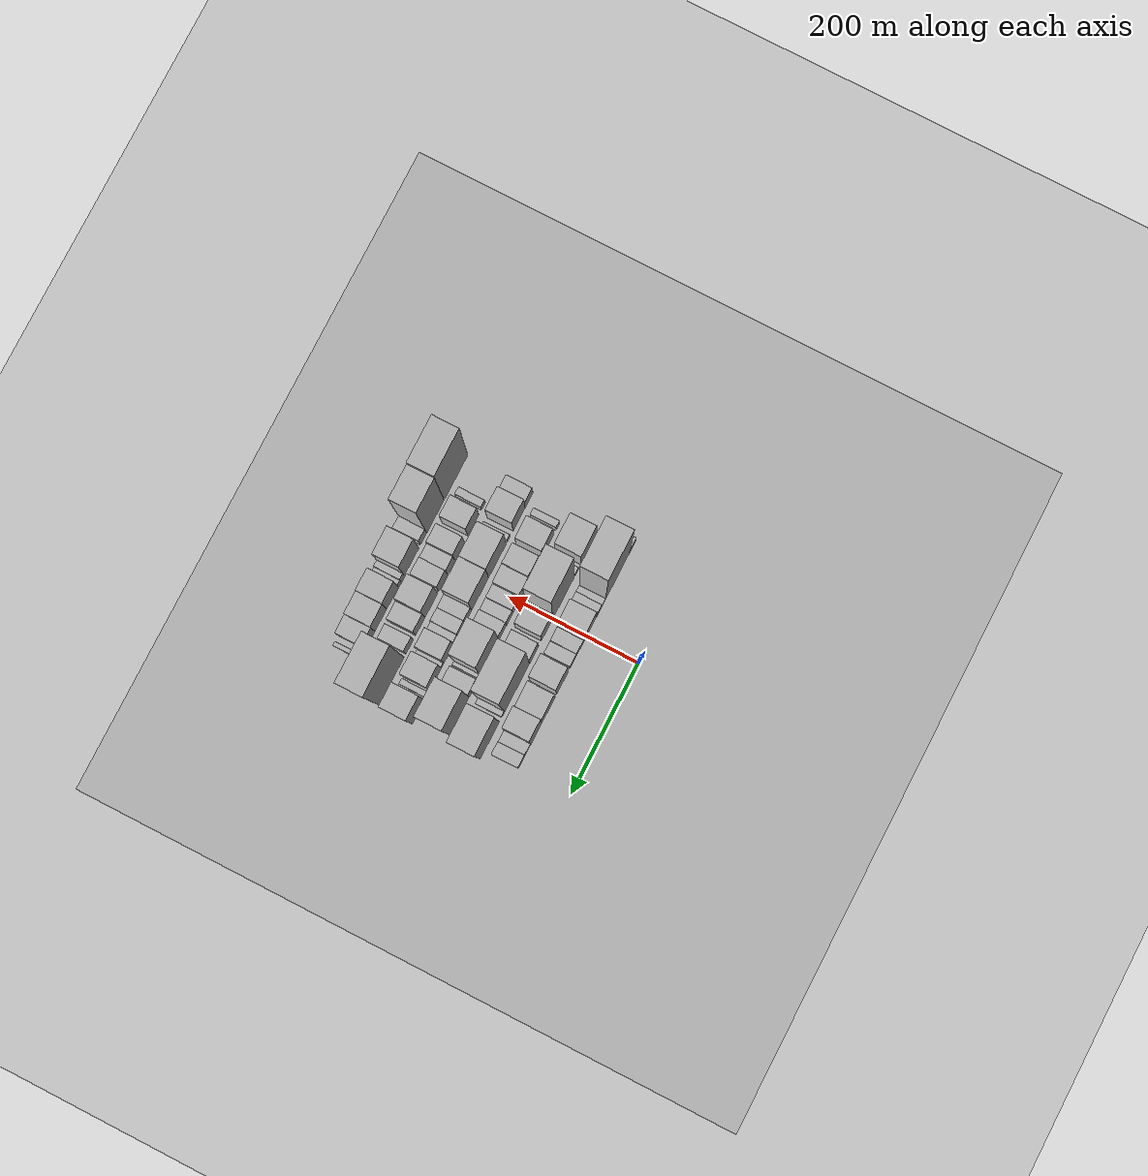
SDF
<sdf version="1.6">
 <world name="default">
  <include><name>ground_plane_1</name><uri>model://HANNAS_ground_plane</uri></include>
  <include>
   <name>ground_plane_2</name>
   <uri>model://HANNAS_ground_plane</uri>
   <pose>100 0 0  0 0 0</pose>
  </include>
  <model name="building_23">
   <static>1</static>
   <pose>100.0000 -137.6014 0 0.000000 0.000000 0.000000</pose>
   <link name="link">
    <pose>0 0 18.00 0 0 0</pose>
    <collision name="collision"><geometry><box><size>40.0000 19.6725 36.0000</size></box></geometry></collision>
    <visual name="visual">
     <cast_shadows>0</cast_shadows>
     <geometry><box><size>40.0000 19.6725 36.0000</size></box></geometry>
     <material>
      <script>
       <uri>model://HANNAS_wall/materials/scripts</uri>
       <uri>model://HANNAS_wall/materials/textures</uri>
       <name>vrc/HANNAS_wall</name>
      </script>
     </material>
    </visual>
   </link>
  </model>
  <model name="building_24">
   <static>1</static>
   <pose>100.0000 -91.9433 0 0.000000 0.000000 0.000000</pose>
   <link name="link">
    <pose>0 0 109.50 0 0 0</pose>
    <collision name="collision"><geometry><box><size>40.0000 71.6437 219.0000</size></box></geometry></collision>
    <visual name="visual">
     <cast_shadows>0</cast_shadows>
     <geometry><box><size>40.0000 71.6437 219.0000</size></box></geometry>
     <material>
      <script>
       <uri>model://HANNAS_wall/materials/scripts</uri>
       <uri>model://HANNAS_wall/materials/textures</uri>
       <name>vrc/HANNAS_wall</name>
      </script>
     </material>
    </visual>
   </link>
  </model>
  <model name="building_25">
   <static>1</static>
   <pose>100.0000 -50.9003 0 0.000000 0.000000 0.000000</pose>
   <link name="link">
    <pose>0 0 12.00 0 0 0</pose>
    <collision name="collision"><geometry><box><size>40.0000 10.4422 24.0000</size></box></geometry></collision>
    <visual name="visual">
     <cast_shadows>0</cast_shadows>
     <geometry><box><size>40.0000 10.4422 24.0000</size></box></geometry>
     <material>
      <script>
       <uri>model://HANNAS_wall/materials/scripts</uri>
       <uri>model://HANNAS_wall/materials/textures</uri>
       <name>vrc/HANNAS_wall</name>
      </script>
     </material>
    </visual>
   </link>
  </model>
  <model name="building_26">
   <static>1</static>
   <pose>100.0000 -37.4652 0 0.000000 0.000000 0.000000</pose>
   <link name="link">
    <pose>0 0 15.00 0 0 0</pose>
    <collision name="collision"><geometry><box><size>40.0000 16.4280 30.0000</size></box></geometry></collision>
    <visual name="visual">
     <cast_shadows>0</cast_shadows>
     <geometry><box><size>40.0000 16.4280 30.0000</size></box></geometry>
     <material>
      <script>
       <uri>model://HANNAS_wall/materials/scripts</uri>
       <uri>model://HANNAS_wall/materials/textures</uri>
       <name>vrc/HANNAS_wall</name>
      </script>
     </material>
    </visual>
   </link>
  </model>
  <model name="building_27">
   <static>1</static>
   <pose>100.0000 -10.2353 0 0.000000 0.000000 0.000000</pose>
   <link name="link">
    <pose>0 0 37.50 0 0 0</pose>
    <collision name="collision"><geometry><box><size>40.0000 38.0316 75.0000</size></box></geometry></collision>
    <visual name="visual">
     <cast_shadows>0</cast_shadows>
     <geometry><box><size>40.0000 38.0316 75.0000</size></box></geometry>
     <material>
      <script>
       <uri>model://HANNAS_wall/materials/scripts</uri>
       <uri>model://HANNAS_wall/materials/textures</uri>
       <name>vrc/HANNAS_wall</name>
      </script>
     </material>
    </visual>
   </link>
  </model>
  <model name="building_28">
   <static>1</static>
   <pose>100.0000 19.3150 0 0.000000 0.000000 0.000000</pose>
   <link name="link">
    <pose>0 0 18.00 0 0 0</pose>
    <collision name="collision"><geometry><box><size>40.0000 21.0690 36.0000</size></box></geometry></collision>
    <visual name="visual">
     <cast_shadows>0</cast_shadows>
     <geometry><box><size>40.0000 21.0690 36.0000</size></box></geometry>
     <material>
      <script>
       <uri>model://HANNAS_wall/materials/scripts</uri>
       <uri>model://HANNAS_wall/materials/textures</uri>
       <name>vrc/HANNAS_wall</name>
      </script>
     </material>
    </visual>
   </link>
  </model>
  <model name="building_29">
   <static>1</static>
   <pose>100.0000 39.4453 0 0.000000 0.000000 0.000000</pose>
   <link name="link">
    <pose>0 0 16.50 0 0 0</pose>
    <collision name="collision"><geometry><box><size>40.0000 19.1917 33.0000</size></box></geometry></collision>
    <visual name="visual">
     <cast_shadows>0</cast_shadows>
     <geometry><box><size>40.0000 19.1917 33.0000</size></box></geometry>
     <material>
      <script>
       <uri>model://HANNAS_wall/materials/scripts</uri>
       <uri>model://HANNAS_wall/materials/textures</uri>
       <name>vrc/HANNAS_wall</name>
      </script>
     </material>
    </visual>
   </link>
  </model>
  <model name="building_30">
   <static>1</static>
   <pose>100.0000 72.2070 0 0.000000 0.000000 0.000000</pose>
   <link name="link">
    <pose>0 0 51.00 0 0 0</pose>
    <collision name="collision"><geometry><box><size>40.0000 34.3316 102.0000</size></box></geometry></collision>
    <visual name="visual">
     <cast_shadows>0</cast_shadows>
     <geometry><box><size>40.0000 34.3316 102.0000</size></box></geometry>
     <material>
      <script>
       <uri>model://HANNAS_wall/materials/scripts</uri>
       <uri>model://HANNAS_wall/materials/textures</uri>
       <name>vrc/HANNAS_wall</name>
      </script>
     </material>
    </visual>
   </link>
  </model>
  <model name="building_31">
   <static>1</static>
   <pose>100.0000 112.7792 0 0.000000 0.000000 0.000000</pose>
   <link name="link">
    <pose>0 0 37.50 0 0 0</pose>
    <collision name="collision"><geometry><box><size>40.0000 38.8129 75.0000</size></box></geometry></collision>
    <visual name="visual">
     <cast_shadows>0</cast_shadows>
     <geometry><box><size>40.0000 38.8129 75.0000</size></box></geometry>
     <material>
      <script>
       <uri>model://HANNAS_wall/materials/scripts</uri>
       <uri>model://HANNAS_wall/materials/textures</uri>
       <name>vrc/HANNAS_wall</name>
      </script>
     </material>
    </visual>
   </link>
  </model>
  <model name="building_32">
   <static>1</static>
   <pose>100.0000 148.5087 0 0.000000 0.000000 0.000000</pose>
   <link name="link">
    <pose>0 0 54.00 0 0 0</pose>
    <collision name="collision"><geometry><box><size>40.0000 32.6460 108.0000</size></box></geometry></collision>
    <visual name="visual">
     <cast_shadows>0</cast_shadows>
     <geometry><box><size>40.0000 32.6460 108.0000</size></box></geometry>
     <material>
      <script>
       <uri>model://HANNAS_wall/materials/scripts</uri>
       <uri>model://HANNAS_wall/materials/textures</uri>
       <name>vrc/HANNAS_wall</name>
      </script>
     </material>
    </visual>
   </link>
  </model>
  <model name="building_33">
   <static>1</static>
   <pose>100.0000 173.4542 0 0.000000 0.000000 0.000000</pose>
   <link name="link">
    <pose>0 0 15.00 0 0 0</pose>
    <collision name="collision"><geometry><box><size>40.0000 17.2449 30.0000</size></box></geometry></collision>
    <visual name="visual">
     <cast_shadows>0</cast_shadows>
     <geometry><box><size>40.0000 17.2449 30.0000</size></box></geometry>
     <material>
      <script>
       <uri>model://HANNAS_wall/materials/scripts</uri>
       <uri>model://HANNAS_wall/materials/textures</uri>
       <name>vrc/HANNAS_wall</name>
      </script>
     </material>
    </visual>
   </link>
  </model>
  <model name="building_34">
   <static>1</static>
   <pose>100.0000 191.8668 0 0.000000 0.000000 0.000000</pose>
   <link name="link">
    <pose>0 0 19.50 0 0 0</pose>
    <collision name="collision"><geometry><box><size>40.0000 19.5803 39.0000</size></box></geometry></collision>
    <visual name="visual">
     <cast_shadows>0</cast_shadows>
     <geometry><box><size>40.0000 19.5803 39.0000</size></box></geometry>
     <material>
      <script>
       <uri>model://HANNAS_wall/materials/scripts</uri>
       <uri>model://HANNAS_wall/materials/textures</uri>
       <name>vrc/HANNAS_wall</name>
      </script>
     </material>
    </visual>
   </link>
  </model>
  <model name="building_86">
   <static>1</static>
   <pose>152.0000 -107.5899 0 0.000000 0.000000 0.000000</pose>
   <link name="link">
    <pose>0 0 40.50 0 0 0</pose>
    <collision name="collision"><geometry><box><size>40.0000 46.4714 81.0000</size></box></geometry></collision>
    <visual name="visual">
     <cast_shadows>0</cast_shadows>
     <geometry><box><size>40.0000 46.4714 81.0000</size></box></geometry>
     <material>
      <script>
       <uri>model://HANNAS_wall/materials/scripts</uri>
       <uri>model://HANNAS_wall/materials/textures</uri>
       <name>vrc/HANNAS_wall</name>
      </script>
     </material>
    </visual>
   </link>
  </model>
  <model name="building_87">
   <static>1</static>
   <pose>152.0000 -72.3711 0 0.000000 0.000000 0.000000</pose>
   <link name="link">
    <pose>0 0 10.50 0 0 0</pose>
    <collision name="collision"><geometry><box><size>40.0000 9.9662 21.0000</size></box></geometry></collision>
    <visual name="visual">
     <cast_shadows>0</cast_shadows>
     <geometry><box><size>40.0000 9.9662 21.0000</size></box></geometry>
     <material>
      <script>
       <uri>model://HANNAS_wall/materials/scripts</uri>
       <uri>model://HANNAS_wall/materials/textures</uri>
       <name>vrc/HANNAS_wall</name>
      </script>
     </material>
    </visual>
   </link>
  </model>
  <model name="building_88">
   <static>1</static>
   <pose>152.0000 -32.6085 0 0.000000 0.000000 0.000000</pose>
   <link name="link">
    <pose>0 0 99.00 0 0 0</pose>
    <collision name="collision"><geometry><box><size>40.0000 63.5590 198.0000</size></box></geometry></collision>
    <visual name="visual">
     <cast_shadows>0</cast_shadows>
     <geometry><box><size>40.0000 63.5590 198.0000</size></box></geometry>
     <material>
      <script>
       <uri>model://HANNAS_wall/materials/scripts</uri>
       <uri>model://HANNAS_wall/materials/textures</uri>
       <name>vrc/HANNAS_wall</name>
      </script>
     </material>
    </visual>
   </link>
  </model>
  <model name="building_89">
   <static>1</static>
   <pose>152.0000 16.1946 0 0.000000 0.000000 0.000000</pose>
   <link name="link">
    <pose>0 0 33.00 0 0 0</pose>
    <collision name="collision"><geometry><box><size>40.0000 34.0472 66.0000</size></box></geometry></collision>
    <visual name="visual">
     <cast_shadows>0</cast_shadows>
     <geometry><box><size>40.0000 34.0472 66.0000</size></box></geometry>
     <material>
      <script>
       <uri>model://HANNAS_wall/materials/scripts</uri>
       <uri>model://HANNAS_wall/materials/textures</uri>
       <name>vrc/HANNAS_wall</name>
      </script>
     </material>
    </visual>
   </link>
  </model>
  <model name="building_90">
   <static>1</static>
   <pose>152.0000 54.7938 0 0.000000 0.000000 0.000000</pose>
   <link name="link">
    <pose>0 0 25.50 0 0 0</pose>
    <collision name="collision"><geometry><box><size>40.0000 27.1513 51.0000</size></box></geometry></collision>
    <visual name="visual">
     <cast_shadows>0</cast_shadows>
     <geometry><box><size>40.0000 27.1513 51.0000</size></box></geometry>
     <material>
      <script>
       <uri>model://HANNAS_wall/materials/scripts</uri>
       <uri>model://HANNAS_wall/materials/textures</uri>
       <name>vrc/HANNAS_wall</name>
      </script>
     </material>
    </visual>
   </link>
  </model>
  <model name="building_91">
   <static>1</static>
   <pose>152.0000 105.2189 0 0.000000 0.000000 0.000000</pose>
   <link name="link">
    <pose>0 0 94.50 0 0 0</pose>
    <collision name="collision"><geometry><box><size>40.0000 73.6988 189.0000</size></box></geometry></collision>
    <visual name="visual">
     <cast_shadows>0</cast_shadows>
     <geometry><box><size>40.0000 73.6988 189.0000</size></box></geometry>
     <material>
      <script>
       <uri>model://HANNAS_wall/materials/scripts</uri>
       <uri>model://HANNAS_wall/materials/textures</uri>
       <name>vrc/HANNAS_wall</name>
      </script>
     </material>
    </visual>
   </link>
  </model>
  <model name="building_92">
   <static>1</static>
   <pose>152.0000 146.3299 0 0.000000 0.000000 0.000000</pose>
   <link name="link">
    <pose>0 0 9.00 0 0 0</pose>
    <collision name="collision"><geometry><box><size>40.0000 8.5233 18.0000</size></box></geometry></collision>
    <visual name="visual">
     <cast_shadows>0</cast_shadows>
     <geometry><box><size>40.0000 8.5233 18.0000</size></box></geometry>
     <material>
      <script>
       <uri>model://HANNAS_wall/materials/scripts</uri>
       <uri>model://HANNAS_wall/materials/textures</uri>
       <name>vrc/HANNAS_wall</name>
      </script>
     </material>
    </visual>
   </link>
  </model>
  <model name="building_93">
   <static>1</static>
   <pose>152.0000 185.6778 0 0.000000 0.000000 0.000000</pose>
   <link name="link">
    <pose>0 0 75.00 0 0 0</pose>
    <collision name="collision"><geometry><box><size>40.0000 56.1724 150.0000</size></box></geometry></collision>
    <visual name="visual">
     <cast_shadows>0</cast_shadows>
     <geometry><box><size>40.0000 56.1724 150.0000</size></box></geometry>
     <material>
      <script>
       <uri>model://HANNAS_wall/materials/scripts</uri>
       <uri>model://HANNAS_wall/materials/textures</uri>
       <name>vrc/HANNAS_wall</name>
      </script>
     </material>
    </visual>
   </link>
  </model>
  <model name="building_130">
   <static>1</static>
   <pose>204.0000 -116.7691 0 0.000000 0.000000 0.000000</pose>
   <link name="link">
    <pose>0 0 12.00 0 0 0</pose>
    <collision name="collision"><geometry><box><size>40.0000 10.6506 24.0000</size></box></geometry></collision>
    <visual name="visual">
     <cast_shadows>0</cast_shadows>
     <geometry><box><size>40.0000 10.6506 24.0000</size></box></geometry>
     <material>
      <script>
       <uri>model://HANNAS_wall/materials/scripts</uri>
       <uri>model://HANNAS_wall/materials/textures</uri>
       <name>vrc/HANNAS_wall</name>
      </script>
     </material>
    </visual>
   </link>
  </model>
  <model name="building_131">
   <static>1</static>
   <pose>204.0000 -86.3166 0 0.000000 0.000000 0.000000</pose>
   <link name="link">
    <pose>0 0 30.00 0 0 0</pose>
    <collision name="collision"><geometry><box><size>40.0000 34.2545 60.0000</size></box></geometry></collision>
    <visual name="visual">
     <cast_shadows>0</cast_shadows>
     <geometry><box><size>40.0000 34.2545 60.0000</size></box></geometry>
     <material>
      <script>
       <uri>model://HANNAS_wall/materials/scripts</uri>
       <uri>model://HANNAS_wall/materials/textures</uri>
       <name>vrc/HANNAS_wall</name>
      </script>
     </material>
    </visual>
   </link>
  </model>
  <model name="building_132">
   <static>1</static>
   <pose>204.0000 -46.6517 0 0.000000 0.000000 0.000000</pose>
   <link name="link">
    <pose>0 0 30.00 0 0 0</pose>
    <collision name="collision"><geometry><box><size>40.0000 31.0752 60.0000</size></box></geometry></collision>
    <visual name="visual">
     <cast_shadows>0</cast_shadows>
     <geometry><box><size>40.0000 31.0752 60.0000</size></box></geometry>
     <material>
      <script>
       <uri>model://HANNAS_wall/materials/scripts</uri>
       <uri>model://HANNAS_wall/materials/textures</uri>
       <name>vrc/HANNAS_wall</name>
      </script>
     </material>
    </visual>
   </link>
  </model>
  <model name="building_133">
   <static>1</static>
   <pose>204.0000 -17.0158 0 0.000000 0.000000 0.000000</pose>
   <link name="link">
    <pose>0 0 27.00 0 0 0</pose>
    <collision name="collision"><geometry><box><size>40.0000 28.1968 54.0000</size></box></geometry></collision>
    <visual name="visual">
     <cast_shadows>0</cast_shadows>
     <geometry><box><size>40.0000 28.1968 54.0000</size></box></geometry>
     <material>
      <script>
       <uri>model://HANNAS_wall/materials/scripts</uri>
       <uri>model://HANNAS_wall/materials/textures</uri>
       <name>vrc/HANNAS_wall</name>
      </script>
     </material>
    </visual>
   </link>
  </model>
  <model name="building_134">
   <static>1</static>
   <pose>204.0000 7.2032 0 0.000000 0.000000 0.000000</pose>
   <link name="link">
    <pose>0 0 19.50 0 0 0</pose>
    <collision name="collision"><geometry><box><size>40.0000 20.2411 39.0000</size></box></geometry></collision>
    <visual name="visual">
     <cast_shadows>0</cast_shadows>
     <geometry><box><size>40.0000 20.2411 39.0000</size></box></geometry>
     <material>
      <script>
       <uri>model://HANNAS_wall/materials/scripts</uri>
       <uri>model://HANNAS_wall/materials/textures</uri>
       <name>vrc/HANNAS_wall</name>
      </script>
     </material>
    </visual>
   </link>
  </model>
  <model name="building_135">
   <static>1</static>
   <pose>204.0000 26.8437 0 0.000000 0.000000 0.000000</pose>
   <link name="link">
    <pose>0 0 16.50 0 0 0</pose>
    <collision name="collision"><geometry><box><size>40.0000 19.0400 33.0000</size></box></geometry></collision>
    <visual name="visual">
     <cast_shadows>0</cast_shadows>
     <geometry><box><size>40.0000 19.0400 33.0000</size></box></geometry>
     <material>
      <script>
       <uri>model://HANNAS_wall/materials/scripts</uri>
       <uri>model://HANNAS_wall/materials/textures</uri>
       <name>vrc/HANNAS_wall</name>
      </script>
     </material>
    </visual>
   </link>
  </model>
  <model name="building_136">
   <static>1</static>
   <pose>204.0000 47.6767 0 0.000000 0.000000 0.000000</pose>
   <link name="link">
    <pose>0 0 21.00 0 0 0</pose>
    <collision name="collision"><geometry><box><size>40.0000 22.6261 42.0000</size></box></geometry></collision>
    <visual name="visual">
     <cast_shadows>0</cast_shadows>
     <geometry><box><size>40.0000 22.6261 42.0000</size></box></geometry>
     <material>
      <script>
       <uri>model://HANNAS_wall/materials/scripts</uri>
       <uri>model://HANNAS_wall/materials/textures</uri>
       <name>vrc/HANNAS_wall</name>
      </script>
     </material>
    </visual>
   </link>
  </model>
  <model name="building_137">
   <static>1</static>
   <pose>204.0000 85.8415 0 0.000000 0.000000 0.000000</pose>
   <link name="link">
    <pose>0 0 67.50 0 0 0</pose>
    <collision name="collision"><geometry><box><size>40.0000 53.7035 135.0000</size></box></geometry></collision>
    <visual name="visual">
     <cast_shadows>0</cast_shadows>
     <geometry><box><size>40.0000 53.7035 135.0000</size></box></geometry>
     <material>
      <script>
       <uri>model://HANNAS_wall/materials/scripts</uri>
       <uri>model://HANNAS_wall/materials/textures</uri>
       <name>vrc/HANNAS_wall</name>
      </script>
     </material>
    </visual>
   </link>
  </model>
  <model name="building_138">
   <static>1</static>
   <pose>204.0000 115.7092 0 0.000000 0.000000 0.000000</pose>
   <link name="link">
    <pose>0 0 7.50 0 0 0</pose>
    <collision name="collision"><geometry><box><size>40.0000 6.0317 15.0000</size></box></geometry></collision>
    <visual name="visual">
     <cast_shadows>0</cast_shadows>
     <geometry><box><size>40.0000 6.0317 15.0000</size></box></geometry>
     <material>
      <script>
       <uri>model://HANNAS_wall/materials/scripts</uri>
       <uri>model://HANNAS_wall/materials/textures</uri>
       <name>vrc/HANNAS_wall</name>
      </script>
     </material>
    </visual>
   </link>
  </model>
  <model name="building_139">
   <static>1</static>
   <pose>204.0000 134.1644 0 0.000000 0.000000 0.000000</pose>
   <link name="link">
    <pose>0 0 21.00 0 0 0</pose>
    <collision name="collision"><geometry><box><size>40.0000 24.8788 42.0000</size></box></geometry></collision>
    <visual name="visual">
     <cast_shadows>0</cast_shadows>
     <geometry><box><size>40.0000 24.8788 42.0000</size></box></geometry>
     <material>
      <script>
       <uri>model://HANNAS_wall/materials/scripts</uri>
       <uri>model://HANNAS_wall/materials/textures</uri>
       <name>vrc/HANNAS_wall</name>
      </script>
     </material>
    </visual>
   </link>
  </model>
  <model name="building_140">
   <static>1</static>
   <pose>204.0000 175.3065 0 0.000000 0.000000 0.000000</pose>
   <link name="link">
    <pose>0 0 75.00 0 0 0</pose>
    <collision name="collision"><geometry><box><size>40.0000 57.4054 150.0000</size></box></geometry></collision>
    <visual name="visual">
     <cast_shadows>0</cast_shadows>
     <geometry><box><size>40.0000 57.4054 150.0000</size></box></geometry>
     <material>
      <script>
       <uri>model://HANNAS_wall/materials/scripts</uri>
       <uri>model://HANNAS_wall/materials/textures</uri>
       <name>vrc/HANNAS_wall</name>
      </script>
     </material>
    </visual>
   </link>
  </model>
  <model name="building_180">
   <static>1</static>
   <pose>256.0000 -131.1268 0 0.000000 0.000000 0.000000</pose>
   <link name="link">
    <pose>0 0 21.00 0 0 0</pose>
    <collision name="collision"><geometry><box><size>40.0000 23.1559 42.0000</size></box></geometry></collision>
    <visual name="visual">
     <cast_shadows>0</cast_shadows>
     <geometry><box><size>40.0000 23.1559 42.0000</size></box></geometry>
     <material>
      <script>
       <uri>model://HANNAS_wall/materials/scripts</uri>
       <uri>model://HANNAS_wall/materials/textures</uri>
       <name>vrc/HANNAS_wall</name>
      </script>
     </material>
    </visual>
   </link>
  </model>
  <model name="building_181">
   <static>1</static>
   <pose>256.0000 -101.5556 0 0.000000 0.000000 0.000000</pose>
   <link name="link">
    <pose>0 0 34.50 0 0 0</pose>
    <collision name="collision"><geometry><box><size>40.0000 35.9864 69.0000</size></box></geometry></collision>
    <visual name="visual">
     <cast_shadows>0</cast_shadows>
     <geometry><box><size>40.0000 35.9864 69.0000</size></box></geometry>
     <material>
      <script>
       <uri>model://HANNAS_wall/materials/scripts</uri>
       <uri>model://HANNAS_wall/materials/textures</uri>
       <name>vrc/HANNAS_wall</name>
      </script>
     </material>
    </visual>
   </link>
  </model>
  <model name="building_182">
   <static>1</static>
   <pose>256.0000 -70.3364 0 0.000000 0.000000 0.000000</pose>
   <link name="link">
    <pose>0 0 10.50 0 0 0</pose>
    <collision name="collision"><geometry><box><size>40.0000 8.4520 21.0000</size></box></geometry></collision>
    <visual name="visual">
     <cast_shadows>0</cast_shadows>
     <geometry><box><size>40.0000 8.4520 21.0000</size></box></geometry>
     <material>
      <script>
       <uri>model://HANNAS_wall/materials/scripts</uri>
       <uri>model://HANNAS_wall/materials/textures</uri>
       <name>vrc/HANNAS_wall</name>
      </script>
     </material>
    </visual>
   </link>
  </model>
  <model name="building_183">
   <static>1</static>
   <pose>256.0000 -36.9069 0 0.000000 0.000000 0.000000</pose>
   <link name="link">
    <pose>0 0 45.00 0 0 0</pose>
    <collision name="collision"><geometry><box><size>40.0000 52.4070 90.0000</size></box></geometry></collision>
    <visual name="visual">
     <cast_shadows>0</cast_shadows>
     <geometry><box><size>40.0000 52.4070 90.0000</size></box></geometry>
     <material>
      <script>
       <uri>model://HANNAS_wall/materials/scripts</uri>
       <uri>model://HANNAS_wall/materials/textures</uri>
       <name>vrc/HANNAS_wall</name>
      </script>
     </material>
    </visual>
   </link>
  </model>
  <model name="building_184">
   <static>1</static>
   <pose>256.0000 14.3440 0 0.000000 0.000000 0.000000</pose>
   <link name="link">
    <pose>0 0 43.50 0 0 0</pose>
    <collision name="collision"><geometry><box><size>40.0000 50.0947 87.0000</size></box></geometry></collision>
    <visual name="visual">
     <cast_shadows>0</cast_shadows>
     <geometry><box><size>40.0000 50.0947 87.0000</size></box></geometry>
     <material>
      <script>
       <uri>model://HANNAS_wall/materials/scripts</uri>
       <uri>model://HANNAS_wall/materials/textures</uri>
       <name>vrc/HANNAS_wall</name>
      </script>
     </material>
    </visual>
   </link>
  </model>
  <model name="building_185">
   <static>1</static>
   <pose>256.0000 49.5492 0 0.000000 0.000000 0.000000</pose>
   <link name="link">
    <pose>0 0 18.00 0 0 0</pose>
    <collision name="collision"><geometry><box><size>40.0000 20.3156 36.0000</size></box></geometry></collision>
    <visual name="visual">
     <cast_shadows>0</cast_shadows>
     <geometry><box><size>40.0000 20.3156 36.0000</size></box></geometry>
     <material>
      <script>
       <uri>model://HANNAS_wall/materials/scripts</uri>
       <uri>model://HANNAS_wall/materials/textures</uri>
       <name>vrc/HANNAS_wall</name>
      </script>
     </material>
    </visual>
   </link>
  </model>
  <model name="building_186">
   <static>1</static>
   <pose>256.0000 69.8414 0 0.000000 0.000000 0.000000</pose>
   <link name="link">
    <pose>0 0 18.00 0 0 0</pose>
    <collision name="collision"><geometry><box><size>40.0000 20.2688 36.0000</size></box></geometry></collision>
    <visual name="visual">
     <cast_shadows>0</cast_shadows>
     <geometry><box><size>40.0000 20.2688 36.0000</size></box></geometry>
     <material>
      <script>
       <uri>model://HANNAS_wall/materials/scripts</uri>
       <uri>model://HANNAS_wall/materials/textures</uri>
       <name>vrc/HANNAS_wall</name>
      </script>
     </material>
    </visual>
   </link>
  </model>
  <model name="building_187">
   <static>1</static>
   <pose>256.0000 86.1395 0 0.000000 0.000000 0.000000</pose>
   <link name="link">
    <pose>0 0 13.50 0 0 0</pose>
    <collision name="collision"><geometry><box><size>40.0000 12.3274 27.0000</size></box></geometry></collision>
    <visual name="visual">
     <cast_shadows>0</cast_shadows>
     <geometry><box><size>40.0000 12.3274 27.0000</size></box></geometry>
     <material>
      <script>
       <uri>model://HANNAS_wall/materials/scripts</uri>
       <uri>model://HANNAS_wall/materials/textures</uri>
       <name>vrc/HANNAS_wall</name>
      </script>
     </material>
    </visual>
   </link>
  </model>
  <model name="building_188">
   <static>1</static>
   <pose>256.0000 106.8740 0 0.000000 0.000000 0.000000</pose>
   <link name="link">
    <pose>0 0 28.50 0 0 0</pose>
    <collision name="collision"><geometry><box><size>40.0000 29.1418 57.0000</size></box></geometry></collision>
    <visual name="visual">
     <cast_shadows>0</cast_shadows>
     <geometry><box><size>40.0000 29.1418 57.0000</size></box></geometry>
     <material>
      <script>
       <uri>model://HANNAS_wall/materials/scripts</uri>
       <uri>model://HANNAS_wall/materials/textures</uri>
       <name>vrc/HANNAS_wall</name>
      </script>
     </material>
    </visual>
   </link>
  </model>
  <model name="building_189">
   <static>1</static>
   <pose>256.0000 124.9337 0 0.000000 0.000000 0.000000</pose>
   <link name="link">
    <pose>0 0 7.50 0 0 0</pose>
    <collision name="collision"><geometry><box><size>40.0000 6.9775 15.0000</size></box></geometry></collision>
    <visual name="visual">
     <cast_shadows>0</cast_shadows>
     <geometry><box><size>40.0000 6.9775 15.0000</size></box></geometry>
     <material>
      <script>
       <uri>model://HANNAS_wall/materials/scripts</uri>
       <uri>model://HANNAS_wall/materials/textures</uri>
       <name>vrc/HANNAS_wall</name>
      </script>
     </material>
    </visual>
   </link>
  </model>
  <model name="building_190">
   <static>1</static>
   <pose>256.0000 145.5637 0 0.000000 0.000000 0.000000</pose>
   <link name="link">
    <pose>0 0 33.00 0 0 0</pose>
    <collision name="collision"><geometry><box><size>40.0000 34.2825 66.0000</size></box></geometry></collision>
    <visual name="visual">
     <cast_shadows>0</cast_shadows>
     <geometry><box><size>40.0000 34.2825 66.0000</size></box></geometry>
     <material>
      <script>
       <uri>model://HANNAS_wall/materials/scripts</uri>
       <uri>model://HANNAS_wall/materials/textures</uri>
       <name>vrc/HANNAS_wall</name>
      </script>
     </material>
    </visual>
   </link>
  </model>
  <model name="building_191">
   <static>1</static>
   <pose>256.0000 169.9745 0 0.000000 0.000000 0.000000</pose>
   <link name="link">
    <pose>0 0 9.00 0 0 0</pose>
    <collision name="collision"><geometry><box><size>40.0000 8.5392 18.0000</size></box></geometry></collision>
    <visual name="visual">
     <cast_shadows>0</cast_shadows>
     <geometry><box><size>40.0000 8.5392 18.0000</size></box></geometry>
     <material>
      <script>
       <uri>model://HANNAS_wall/materials/scripts</uri>
       <uri>model://HANNAS_wall/materials/textures</uri>
       <name>vrc/HANNAS_wall</name>
      </script>
     </material>
    </visual>
   </link>
  </model>
  <model name="building_192">
   <static>1</static>
   <pose>256.0000 195.5823 0 0.000000 0.000000 0.000000</pose>
   <link name="link">
    <pose>0 0 49.50 0 0 0</pose>
    <collision name="collision"><geometry><box><size>40.0000 36.6764 99.0000</size></box></geometry></collision>
    <visual name="visual">
     <cast_shadows>0</cast_shadows>
     <geometry><box><size>40.0000 36.6764 99.0000</size></box></geometry>
     <material>
      <script>
       <uri>model://HANNAS_wall/materials/scripts</uri>
       <uri>model://HANNAS_wall/materials/textures</uri>
       <name>vrc/HANNAS_wall</name>
      </script>
     </material>
    </visual>
   </link>
  </model>
  <model name="building_233">
   <static>1</static>
   <pose>308.0000 -95.2245 0 0.000000 0.000000 0.000000</pose>
   <link name="link">
    <pose>0 0 12.00 0 0 0</pose>
    <collision name="collision"><geometry><box><size>40.0000 11.2804 24.0000</size></box></geometry></collision>
    <visual name="visual">
     <cast_shadows>0</cast_shadows>
     <geometry><box><size>40.0000 11.2804 24.0000</size></box></geometry>
     <material>
      <script>
       <uri>model://HANNAS_wall/materials/scripts</uri>
       <uri>model://HANNAS_wall/materials/textures</uri>
       <name>vrc/HANNAS_wall</name>
      </script>
     </material>
    </visual>
   </link>
  </model>
  <model name="building_234">
   <static>1</static>
   <pose>308.0000 -65.3916 0 0.000000 0.000000 0.000000</pose>
   <link name="link">
    <pose>0 0 30.00 0 0 0</pose>
    <collision name="collision"><geometry><box><size>40.0000 32.3853 60.0000</size></box></geometry></collision>
    <visual name="visual">
     <cast_shadows>0</cast_shadows>
     <geometry><box><size>40.0000 32.3853 60.0000</size></box></geometry>
     <material>
      <script>
       <uri>model://HANNAS_wall/materials/scripts</uri>
       <uri>model://HANNAS_wall/materials/textures</uri>
       <name>vrc/HANNAS_wall</name>
      </script>
     </material>
    </visual>
   </link>
  </model>
  <model name="building_235">
   <static>1</static>
   <pose>308.0000 -24.9611 0 0.000000 0.000000 0.000000</pose>
   <link name="link">
    <pose>0 0 27.00 0 0 0</pose>
    <collision name="collision"><geometry><box><size>40.0000 28.4758 54.0000</size></box></geometry></collision>
    <visual name="visual">
     <cast_shadows>0</cast_shadows>
     <geometry><box><size>40.0000 28.4758 54.0000</size></box></geometry>
     <material>
      <script>
       <uri>model://HANNAS_wall/materials/scripts</uri>
       <uri>model://HANNAS_wall/materials/textures</uri>
       <name>vrc/HANNAS_wall</name>
      </script>
     </material>
    </visual>
   </link>
  </model>
  <model name="building_236">
   <static>1</static>
   <pose>308.0000 0.2583 0 0.000000 0.000000 0.000000</pose>
   <link name="link">
    <pose>0 0 21.00 0 0 0</pose>
    <collision name="collision"><geometry><box><size>40.0000 21.9629 42.0000</size></box></geometry></collision>
    <visual name="visual">
     <cast_shadows>0</cast_shadows>
     <geometry><box><size>40.0000 21.9629 42.0000</size></box></geometry>
     <material>
      <script>
       <uri>model://HANNAS_wall/materials/scripts</uri>
       <uri>model://HANNAS_wall/materials/textures</uri>
       <name>vrc/HANNAS_wall</name>
      </script>
     </material>
    </visual>
   </link>
  </model>
  <model name="building_237">
   <static>1</static>
   <pose>308.0000 24.1723 0 0.000000 0.000000 0.000000</pose>
   <link name="link">
    <pose>0 0 24.00 0 0 0</pose>
    <collision name="collision"><geometry><box><size>40.0000 25.8652 48.0000</size></box></geometry></collision>
    <visual name="visual">
     <cast_shadows>0</cast_shadows>
     <geometry><box><size>40.0000 25.8652 48.0000</size></box></geometry>
     <material>
      <script>
       <uri>model://HANNAS_wall/materials/scripts</uri>
       <uri>model://HANNAS_wall/materials/textures</uri>
       <name>vrc/HANNAS_wall</name>
      </script>
     </material>
    </visual>
   </link>
  </model>
  <model name="building_238">
   <static>1</static>
   <pose>308.0000 58.9555 0 0.000000 0.000000 0.000000</pose>
   <link name="link">
    <pose>0 0 37.50 0 0 0</pose>
    <collision name="collision"><geometry><box><size>40.0000 37.7011 75.0000</size></box></geometry></collision>
    <visual name="visual">
     <cast_shadows>0</cast_shadows>
     <geometry><box><size>40.0000 37.7011 75.0000</size></box></geometry>
     <material>
      <script>
       <uri>model://HANNAS_wall/materials/scripts</uri>
       <uri>model://HANNAS_wall/materials/textures</uri>
       <name>vrc/HANNAS_wall</name>
      </script>
     </material>
    </visual>
   </link>
  </model>
  <model name="building_239">
   <static>1</static>
   <pose>308.0000 91.4230 0 0.000000 0.000000 0.000000</pose>
   <link name="link">
    <pose>0 0 24.00 0 0 0</pose>
    <collision name="collision"><geometry><box><size>40.0000 27.2339 48.0000</size></box></geometry></collision>
    <visual name="visual">
     <cast_shadows>0</cast_shadows>
     <geometry><box><size>40.0000 27.2339 48.0000</size></box></geometry>
     <material>
      <script>
       <uri>model://HANNAS_wall/materials/scripts</uri>
       <uri>model://HANNAS_wall/materials/textures</uri>
       <name>vrc/HANNAS_wall</name>
      </script>
     </material>
    </visual>
   </link>
  </model>
  <model name="building_240">
   <static>1</static>
   <pose>308.0000 122.2419 0 0.000000 0.000000 0.000000</pose>
   <link name="link">
    <pose>0 0 19.50 0 0 0</pose>
    <collision name="collision"><geometry><box><size>40.0000 22.4039 39.0000</size></box></geometry></collision>
    <visual name="visual">
     <cast_shadows>0</cast_shadows>
     <geometry><box><size>40.0000 22.4039 39.0000</size></box></geometry>
     <material>
      <script>
       <uri>model://HANNAS_wall/materials/scripts</uri>
       <uri>model://HANNAS_wall/materials/textures</uri>
       <name>vrc/HANNAS_wall</name>
      </script>
     </material>
    </visual>
   </link>
  </model>
  <model name="building_241">
   <static>1</static>
   <pose>308.0000 175.1173 0 0.000000 0.000000 0.000000</pose>
   <link name="link">
    <pose>0 0 94.50 0 0 0</pose>
    <collision name="collision"><geometry><box><size>40.0000 73.3469 189.0000</size></box></geometry></collision>
    <visual name="visual">
     <cast_shadows>0</cast_shadows>
     <geometry><box><size>40.0000 73.3469 189.0000</size></box></geometry>
     <material>
      <script>
       <uri>model://HANNAS_wall/materials/scripts</uri>
       <uri>model://HANNAS_wall/materials/textures</uri>
       <name>vrc/HANNAS_wall</name>
      </script>
     </material>
    </visual>
   </link>
  </model>
  <model name="building_283">
   <static>1</static>
   <pose>360.0000 -113.3658 0 0.000000 0.000000 0.000000</pose>
   <link name="link">
    <pose>0 0 88.50 0 0 0</pose>
    <collision name="collision"><geometry><box><size>40.0000 70.2882 177.0000</size></box></geometry></collision>
    <visual name="visual">
     <cast_shadows>0</cast_shadows>
     <geometry><box><size>40.0000 70.2882 177.0000</size></box></geometry>
     <material>
      <script>
       <uri>model://HANNAS_wall/materials/scripts</uri>
       <uri>model://HANNAS_wall/materials/textures</uri>
       <name>vrc/HANNAS_wall</name>
      </script>
     </material>
    </visual>
   </link>
  </model>
  <model name="building_284">
   <static>1</static>
   <pose>360.0000 -52.5748 0 0.000000 0.000000 0.000000</pose>
   <link name="link">
    <pose>0 0 84.00 0 0 0</pose>
    <collision name="collision"><geometry><box><size>40.0000 51.2939 168.0000</size></box></geometry></collision>
    <visual name="visual">
     <cast_shadows>0</cast_shadows>
     <geometry><box><size>40.0000 51.2939 168.0000</size></box></geometry>
     <material>
      <script>
       <uri>model://HANNAS_wall/materials/scripts</uri>
       <uri>model://HANNAS_wall/materials/textures</uri>
       <name>vrc/HANNAS_wall</name>
      </script>
     </material>
    </visual>
   </link>
  </model>
  <model name="building_285">
   <static>1</static>
   <pose>360.0000 -17.6556 0 0.000000 0.000000 0.000000</pose>
   <link name="link">
    <pose>0 0 18.00 0 0 0</pose>
    <collision name="collision"><geometry><box><size>40.0000 18.5445 36.0000</size></box></geometry></collision>
    <visual name="visual">
     <cast_shadows>0</cast_shadows>
     <geometry><box><size>40.0000 18.5445 36.0000</size></box></geometry>
     <material>
      <script>
       <uri>model://HANNAS_wall/materials/scripts</uri>
       <uri>model://HANNAS_wall/materials/textures</uri>
       <name>vrc/HANNAS_wall</name>
      </script>
     </material>
    </visual>
   </link>
  </model>
  <model name="building_286">
   <static>1</static>
   <pose>360.0000 17.8297 0 0.000000 0.000000 0.000000</pose>
   <link name="link">
    <pose>0 0 42.00 0 0 0</pose>
    <collision name="collision"><geometry><box><size>40.0000 42.4261 84.0000</size></box></geometry></collision>
    <visual name="visual">
     <cast_shadows>0</cast_shadows>
     <geometry><box><size>40.0000 42.4261 84.0000</size></box></geometry>
     <material>
      <script>
       <uri>model://HANNAS_wall/materials/scripts</uri>
       <uri>model://HANNAS_wall/materials/textures</uri>
       <name>vrc/HANNAS_wall</name>
      </script>
     </material>
    </visual>
   </link>
  </model>
  <model name="building_287">
   <static>1</static>
   <pose>360.0000 43.8744 0 0.000000 0.000000 0.000000</pose>
   <link name="link">
    <pose>0 0 12.00 0 0 0</pose>
    <collision name="collision"><geometry><box><size>40.0000 9.6633 24.0000</size></box></geometry></collision>
    <visual name="visual">
     <cast_shadows>0</cast_shadows>
     <geometry><box><size>40.0000 9.6633 24.0000</size></box></geometry>
     <material>
      <script>
       <uri>model://HANNAS_wall/materials/scripts</uri>
       <uri>model://HANNAS_wall/materials/textures</uri>
       <name>vrc/HANNAS_wall</name>
      </script>
     </material>
    </visual>
   </link>
  </model>
  <model name="building_288">
   <static>1</static>
   <pose>360.0000 52.8714 0 0.000000 0.000000 0.000000</pose>
   <link name="link">
    <pose>0 0 9.00 0 0 0</pose>
    <collision name="collision"><geometry><box><size>40.0000 8.3306 18.0000</size></box></geometry></collision>
    <visual name="visual">
     <cast_shadows>0</cast_shadows>
     <geometry><box><size>40.0000 8.3306 18.0000</size></box></geometry>
     <material>
      <script>
       <uri>model://HANNAS_wall/materials/scripts</uri>
       <uri>model://HANNAS_wall/materials/textures</uri>
       <name>vrc/HANNAS_wall</name>
      </script>
     </material>
    </visual>
   </link>
  </model>
  <model name="building_289">
   <static>1</static>
   <pose>360.0000 73.9826 0 0.000000 0.000000 0.000000</pose>
   <link name="link">
    <pose>0 0 33.00 0 0 0</pose>
    <collision name="collision"><geometry><box><size>40.0000 33.8918 66.0000</size></box></geometry></collision>
    <visual name="visual">
     <cast_shadows>0</cast_shadows>
     <geometry><box><size>40.0000 33.8918 66.0000</size></box></geometry>
     <material>
      <script>
       <uri>model://HANNAS_wall/materials/scripts</uri>
       <uri>model://HANNAS_wall/materials/textures</uri>
       <name>vrc/HANNAS_wall</name>
      </script>
     </material>
    </visual>
   </link>
  </model>
  <model name="building_290">
   <static>1</static>
   <pose>360.0000 108.1274 0 0.000000 0.000000 0.000000</pose>
   <link name="link">
    <pose>0 0 30.00 0 0 0</pose>
    <collision name="collision"><geometry><box><size>40.0000 34.3979 60.0000</size></box></geometry></collision>
    <visual name="visual">
     <cast_shadows>0</cast_shadows>
     <geometry><box><size>40.0000 34.3979 60.0000</size></box></geometry>
     <material>
      <script>
       <uri>model://HANNAS_wall/materials/scripts</uri>
       <uri>model://HANNAS_wall/materials/textures</uri>
       <name>vrc/HANNAS_wall</name>
      </script>
     </material>
    </visual>
   </link>
  </model>
  <model name="building_291">
   <static>1</static>
   <pose>360.0000 139.4513 0 0.000000 0.000000 0.000000</pose>
   <link name="link">
    <pose>0 0 25.50 0 0 0</pose>
    <collision name="collision"><geometry><box><size>40.0000 28.2498 51.0000</size></box></geometry></collision>
    <visual name="visual">
     <cast_shadows>0</cast_shadows>
     <geometry><box><size>40.0000 28.2498 51.0000</size></box></geometry>
     <material>
      <script>
       <uri>model://HANNAS_wall/materials/scripts</uri>
       <uri>model://HANNAS_wall/materials/textures</uri>
       <name>vrc/HANNAS_wall</name>
      </script>
     </material>
    </visual>
   </link>
  </model>
  <model name="building_292">
   <static>1</static>
   <pose>360.0000 165.8115 0 0.000000 0.000000 0.000000</pose>
   <link name="link">
    <pose>0 0 7.50 0 0 0</pose>
    <collision name="collision"><geometry><box><size>40.0000 6.4706 15.0000</size></box></geometry></collision>
    <visual name="visual">
     <cast_shadows>0</cast_shadows>
     <geometry><box><size>40.0000 6.4706 15.0000</size></box></geometry>
     <material>
      <script>
       <uri>model://HANNAS_wall/materials/scripts</uri>
       <uri>model://HANNAS_wall/materials/textures</uri>
       <name>vrc/HANNAS_wall</name>
      </script>
     </material>
    </visual>
   </link>
  </model>
 </world>
</sdf>
